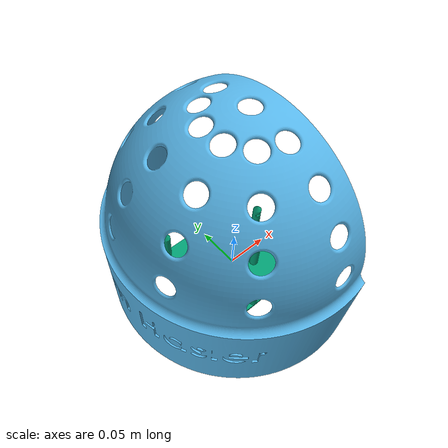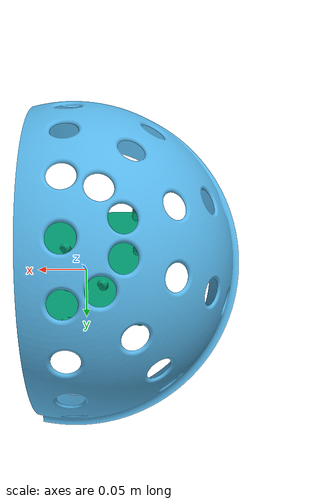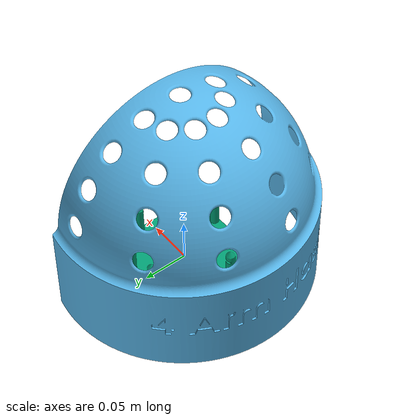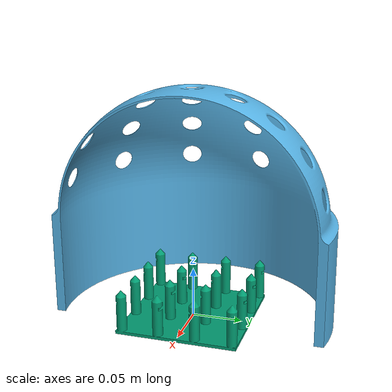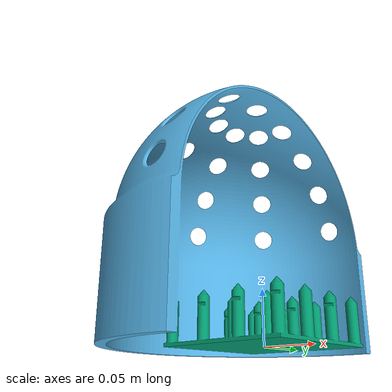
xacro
<?xml version="1.0"?>
<robot xmlns:xacro="http://www.ros.org/wiki/xacro" name="surgical_environment.urdf.xacro">
  <xacro:arg name="origin_x" default="0"/>
  <xacro:arg name="origin_y" default="0"/>
  <xacro:arg name="origin_z" default="0"/>
  <!-- Surgical frame dimensions after proper rotation -->
  <xacro:property name="surgicalFrameXdim" value="0.169996"/>
  <xacro:property name="surgicalFrameYdim" value="0.279956"/>
  <xacro:property name="surgicalFrameZdim" value="0.232344"/>
  <xacro:property name="centerSphereOffset" value="0.1"/>
  <xacro:property name="sphereRadius" value="0.132"/>
  <!-- Table dimensions-->
  <xacro:property name="tableXdim" value="${2*sphereRadius}"/>
  <xacro:property name="tableYdim" value="${sphereRadius}"/>
  <xacro:property name="tableZdim" value="1"/>
  <!-- Pillars dimensions -->
  <xacro:property name="pillarsXdim" value="0.12"/>
  <xacro:property name="pillarsYdim" value="0.12"/>
  <xacro:property name="pillarsZdim" value="0.032"/>

  <link name="world">
      <inertial>
        <origin xyz="0 0 0" rpy="0 0 0"/>
        <mass value="1e-6"/>
        <inertia ixx="1e-6" ixy="0" ixz="0" iyy="1e-6" iyz="0" izz="1e-6"/>
      </inertial>
  </link>
  <gazebo reference="world">
  </gazebo>

  <!-- Include all models -->
  <xacro:include filename="$(find surgical_task)/models/surgical_frame.urdf.xacro"/>
  <xacro:include filename="$(find surgical_task)/models/pillars.urdf.xacro"/>

  <xacro:surgical_frame name="surgical_frame" base_link="world">
    <origin xyz="$(arg origin_x) $(arg origin_y) $(arg origin_z)" rpy="0 0 0"/>
  </xacro:surgical_frame>

  <xacro:pillars name="pillars" base_link="surgical_frame_base_link">
    <origin xyz="0 0 0" rpy="0 0 0"/>
  </xacro:pillars>

</robot>

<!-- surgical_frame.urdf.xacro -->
<robot name="pancreas" xmlns:xacro="http://www.ros.org/wiki/xacro">
  <!-- properties /-->

  <!-- URDF model with default base_link (world)-->
  <xacro:macro name="surgical_frame" params="name base_link:=world *origin">

    <gazebo reference="${base_link}">
    </gazebo>

    <!-- First (shoulder) element of the arm. Fixed to its parent. -->
    <joint name="${name}_base_joint" type="fixed">
      <xacro:insert_block name="origin"/>
      <parent link="${base_link}"/>
      <child link="${name}_base_link"/>
    </joint>

  <link name="${name}_base_link">
    <inertial>
      <origin xyz="0 0 0" rpy="0 0 ${3.1415/2}"/>
      <mass value="1" />
      <inertia ixx="1" ixy="0" ixz="0" iyy="1" iyz="0" izz="1"/>
    </inertial>
    <collision>
      <origin xyz="0 0 0" rpy="0 0 ${3.1415/2}"/>
      <geometry>
        <mesh filename="package://surgical_task/models/surgical_frame.stl" scale="0.001 0.001 0.001"/>
      </geometry>
    </collision>
    <visual>
      <origin xyz="0 0 0" rpy="0 0 ${3.1415/2}"/>
      <geometry>
        <mesh filename="package://surgical_task/models/surgical_frame.stl" scale="0.001 0.001 0.001"/>
      </geometry>
    </visual>
  </link>

   </xacro:macro>

</robot>

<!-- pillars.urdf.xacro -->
<robot name="pancreas" xmlns:xacro="http://www.ros.org/wiki/xacro">
  <!-- properties /-->

  <!-- URDF model with default base_link (world)-->
  <xacro:macro name="pillars" params="name base_link:=world *origin">

    <gazebo reference="${base_link}">
    </gazebo>

    <!-- First (shoulder) element of the arm. Fixed to its parent. -->
    <joint name="${name}_base_joint" type="fixed">
      <insert_block name="origin"/>
      <origin xyz="0 0 0" rpy="0 0 0"/>
      <parent link="${base_link}"/>
      <child link="${name}_base_link"/>
    </joint>

  <link name="${name}_base_link">
    <inertial>
      <origin xyz="0 0 0" rpy="0 0 0"/>
      <mass value="1" />
      <inertia ixx="1" ixy="0" ixz="0" iyy="1" iyz="0" izz="1"/>
    </inertial>
    <collision>
      <origin xyz="0 0 0" rpy="0 0 0"/>
      <geometry>
        <mesh filename="package://surgical_task/models/prop_pillars_16_with_pics.STL" scale="1 1 1"/>
      </geometry>
    </collision>
    <visual>
      <origin xyz="0 0 0" rpy="0 0 0"/>
      <geometry>
        <mesh filename="package://surgical_task/models/prop_pillars_16_with_pics.STL" scale="1 1 1"/>
      </geometry>
    </visual>
  </link>

   </xacro:macro>

</robot>
